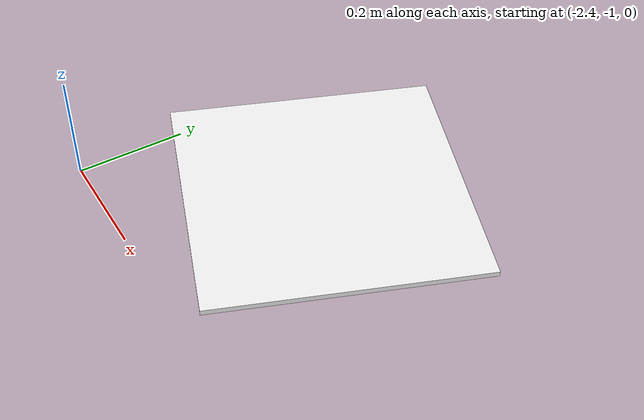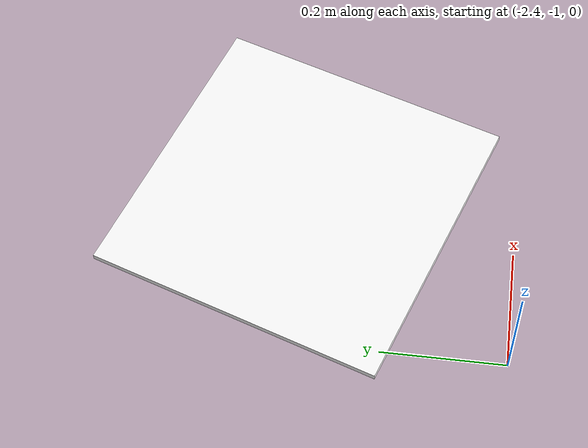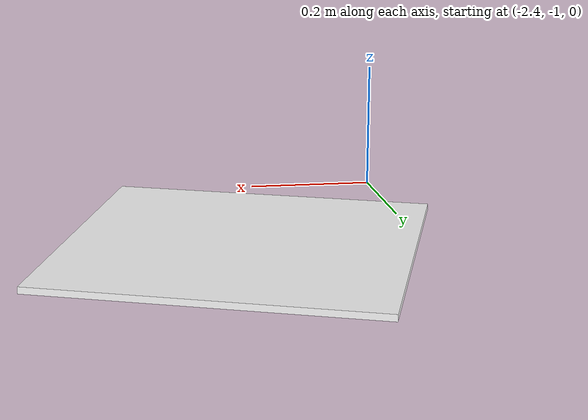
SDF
<sdf version='1.10'>
  <world name='empty'>
    <gravity>0 0 -9.8000000000000007</gravity>
    <physics name='1ms' type='ignored'>
      <max_step_size>0.001</max_step_size>
      <real_time_factor>1</real_time_factor>
      <real_time_update_rate>1000</real_time_update_rate>
    </physics>
    <plugin name='gz::sim::systems::Physics' filename='gz-sim-physics-system'/>
    <plugin name='gz::sim::systems::UserCommands' filename='gz-sim-user-commands-system'/>
    <plugin name='gz::sim::systems::SceneBroadcaster' filename='gz-sim-scene-broadcaster-system'/>
    <plugin name='gz::sim::systems::Contact' filename='gz-sim-contact-system'/>
    <magnetic_field>5.5644999999999998e-06 2.2875799999999999e-05 -4.2388400000000002e-05</magnetic_field>
    <atmosphere type='adiabatic'/>
    <scene>
      <ambient>0.400000006 0.400000006 0.400000006 1</ambient>
      <background>0.699999988 0.699999988 0.699999988 1</background>
      <shadows>true</shadows>
    </scene>
    <model name='billboard_qr'>
      <static>true</static>
      <link name='billboard_link'>
        <pose>0 0 1 1.5708 0 0</pose>
        <visual name='qr_surface'>
          <geometry>
            <box>
              <size>0.5 0.5 0.01</size>
            </box>
          </geometry>
          <material>
            <diffuse>1 1 1 1</diffuse>
            <pbr>
              <metal>
                <albedo_map>qr_target/materials/textures/qr_code.png</albedo_map>
              </metal>
            </pbr>
          </material>
        </visual>
        <collision name='billboard_collision'>
          <geometry>
            <box>
              <size>0.5 0.5 0.01</size>
            </box>
          </geometry>
          <surface>
            <friction>
              <ode/>
            </friction>
            <bounce/>
            <contact/>
          </surface>
        </collision>
        <inertial>
          <pose>0 0 0 0 0 0</pose>
          <mass>1</mass>
          <inertia>
            <ixx>1</ixx>
            <ixy>0</ixy>
            <ixz>0</ixz>
            <iyy>1</iyy>
            <iyz>0</iyz>
            <izz>1</izz>
          </inertia>
        </inertial>
        <enable_wind>false</enable_wind>
      </link>
      <pose>-3.0734699999999999 -0.31147900000000017 1.4641066137244252e-15 1.5638500000000004 0.01960429999999997 1.2304700000000004</pose>
      <self_collide>false</self_collide>
    </model>
    <light name='sun' type='directional'>
      <pose>0 0 10 0 0 0</pose>
      <cast_shadows>true</cast_shadows>
      <intensity>1</intensity>
      <direction>-0.5 0.10000000000000001 -0.90000000000000002</direction>
      <diffuse>0.800000012 0.800000012 0.800000012 1</diffuse>
      <specular>0.200000003 0.200000003 0.200000003 1</specular>
      <attenuation>
        <range>1000</range>
        <linear>0.0099999997764825821</linear>
        <constant>0.89999997615814209</constant>
        <quadratic>0.0010000000474974513</quadratic>
      </attenuation>
      <spot>
        <inner_angle>0</inner_angle>
        <outer_angle>0</outer_angle>
        <falloff>0</falloff>
      </spot>
    </light>
  </world>
</sdf>
